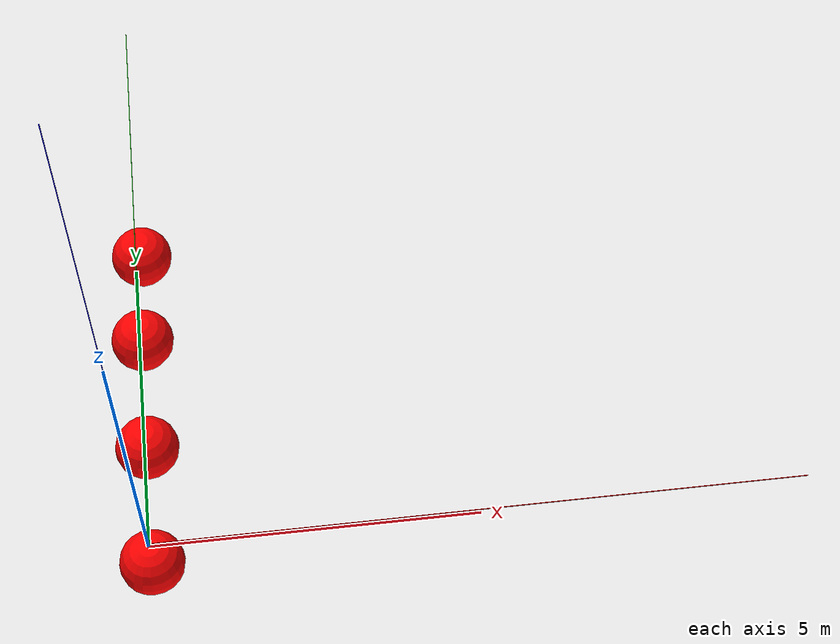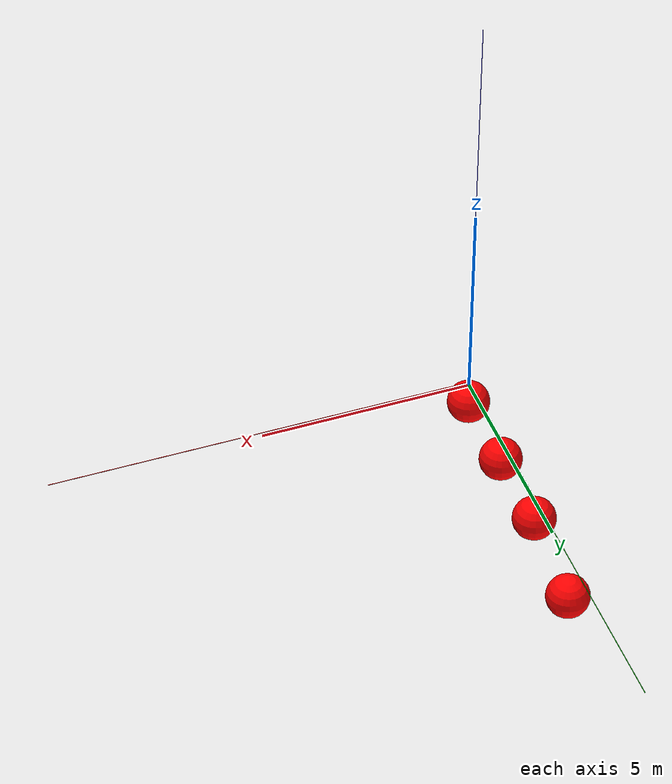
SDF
<sdf version="1.6">
 <world name="buoyancy_test">
  <plugin filename="gz-sim-physics-system" name="gz::sim::systems::Physics"/>
  <plugin filename="gz-sim-sensors-system" name="gz::sim::systems::Sensors">
   <render_engine>ogre2</render_engine>
   <background_color>0.8 0.8 0.8</background_color>
  </plugin>
  <plugin filename="gz-sim-scene-broadcaster-system" name="gz::sim::systems::SceneBroadcaster"/>
  <plugin filename="gz-sim-user-commands-system" name="gz::sim::systems::UserCommands"/>
  <plugin filename="gz-sim-imu-system" name="gz::sim::systems::Imu"/>
  <scene><ambient>1.0 1.0 1.0</ambient><background>0.8 0.8 0.8</background></scene>
  <light type="directional" name="sun">
   <pose>0 0 10 0 0 0</pose>
   <diffuse>0.8 0.8 0.8 1</diffuse>
   <specular>0.6 0.6 0.6 1</specular>
   <direction>-0.5 0.1 -0.9</direction>
  </light>
  <model name="axes">
   <static>1</static>
   <link name="link">
    <visual name="r">
     <cast_shadows>0</cast_shadows>
     <pose>5 0 0.1 0 0 0</pose>
     <geometry><box><size>10 0.01 0.01</size></box></geometry>
     <material>
      <ambient>1 0 0 1</ambient>
      <diffuse>1 0 0 1</diffuse>
      <emissive>1 0 0 1</emissive>
      <specular>0.5 0.5 0.5 1</specular>
     </material>
    </visual>
    <visual name="g">
     <cast_shadows>0</cast_shadows>
     <pose>0 5 0.1 0 0 0</pose>
     <geometry><box><size>0.01 10 0.01</size></box></geometry>
     <material>
      <ambient>0 1 0 1</ambient>
      <diffuse>0 1 0 1</diffuse>
      <emissive>0 1 0 1</emissive>
      <specular>0.5 0.5 0.5 1</specular>
     </material>
    </visual>
    <visual name="b">
     <cast_shadows>0</cast_shadows>
     <pose>0 0 5.1 0 0 0</pose>
     <geometry><box><size>0.01 0.01 10</size></box></geometry>
     <material>
      <ambient>0 0 1 1</ambient>
      <diffuse>0 0 1 1</diffuse>
      <emissive>0 0 1 1</emissive>
      <specular>0.5 0.5 0.5 1</specular>
     </material>
    </visual>
   </link>
  </model>
  <model name="buoy_1">
   <pose>0 0 -0.5 0 0 0</pose>
   <plugin filename="gz-marine1-hydrodynamics-system" name="gz::sim::systems::Hydrodynamics"/>
   <link name="base_link">
    <visual name="visual">
     <geometry><sphere><radius>0.5</radius></sphere></geometry>
     <material><ambient>1 0 0 1</ambient><diffuse>1 0 0 1</diffuse><specular>0.8 0.8 0.8 1</specular></material>
    </visual>
    <collision name="collision"><geometry><sphere><radius>0.5</radius></sphere></geometry></collision>
    <inertial>
     <mass>261.4328687</mass>
     <inertia>
      <ixx>26.14328687</ixx>
      <ixy>0.0</ixy>
      <ixz>0.0</ixz>
      <iyy>26.14328687</iyy>
      <iyz>0.0</iyz>
      <izz>26.14328687</izz>
     </inertia>
    </inertial>
   </link>
  </model>
  <model name="buoy_2">
   <pose>0 2 -0.5 0 0 0</pose>
   <plugin filename="gz-marine1-hydrodynamics-system" name="gz::sim::systems::Hydrodynamics"/>
   <link name="base_link">
    <visual name="visual">
     <geometry><sphere><radius>0.5</radius></sphere></geometry>
     <material><ambient>1 0 0 1</ambient><diffuse>1 0 0 1</diffuse><specular>0.8 0.8 0.8 1</specular></material>
    </visual>
    <collision name="collision"><geometry><sphere><radius>0.5</radius></sphere></geometry></collision>
    <inertial>
     <pose>0 0 -0.5 0 0 0</pose>
     <mass>261.4328687</mass>
     <inertia>
      <ixx>26.14328687</ixx>
      <ixy>0.0</ixy>
      <ixz>0.0</ixz>
      <iyy>26.14328687</iyy>
      <iyz>0.0</iyz>
      <izz>26.14328687</izz>
     </inertia>
    </inertial>
   </link>
  </model>
  <model name="buoy_3">
   <pose>0 4 -0.5 0 0 0</pose>
   <plugin filename="gz-marine1-hydrodynamics-system" name="gz::sim::systems::Hydrodynamics"/>
   <link name="base_link">
    <visual name="visual">
     <geometry><sphere><radius>0.5</radius></sphere></geometry>
     <material><ambient>1 0 0 1</ambient><diffuse>1 0 0 1</diffuse><specular>0.8 0.8 0.8 1</specular></material>
    </visual>
    <collision name="collision">
     <pose>0 0 -0.5 0 0 0</pose>
     <geometry><sphere><radius>0.5</radius></sphere></geometry>
    </collision>
    <inertial>
     <mass>261.4328687</mass>
     <inertia>
      <ixx>26.14328687</ixx>
      <ixy>0.0</ixy>
      <ixz>0.0</ixz>
      <iyy>26.14328687</iyy>
      <iyz>0.0</iyz>
      <izz>26.14328687</izz>
     </inertia>
    </inertial>
   </link>
  </model>
  <model name="buoy_4">
   <pose>0 6 -0.5 0 0 0</pose>
   <plugin filename="gz-marine1-hydrodynamics-system" name="gz::sim::systems::Hydrodynamics"/>
   <link name="base_link">
    <visual name="visual">
     <pose>0 0 -0.5 0 0 0</pose>
     <geometry><sphere><radius>0.5</radius></sphere></geometry>
     <material><ambient>1 0 0 1</ambient><diffuse>1 0 0 1</diffuse><specular>0.8 0.8 0.8 1</specular></material>
    </visual>
    <collision name="collision">
     <pose>0 0 -0.5 0 0 0</pose>
     <geometry><sphere><radius>0.5</radius></sphere></geometry>
    </collision>
    <inertial>
     <mass>261.4328687</mass>
     <inertia>
      <ixx>26.14328687</ixx>
      <ixy>0.0</ixy>
      <ixz>0.0</ixz>
      <iyy>26.14328687</iyy>
      <iyz>0.0</iyz>
      <izz>26.14328687</izz>
     </inertia>
    </inertial>
   </link>
  </model>
 </world>
</sdf>
